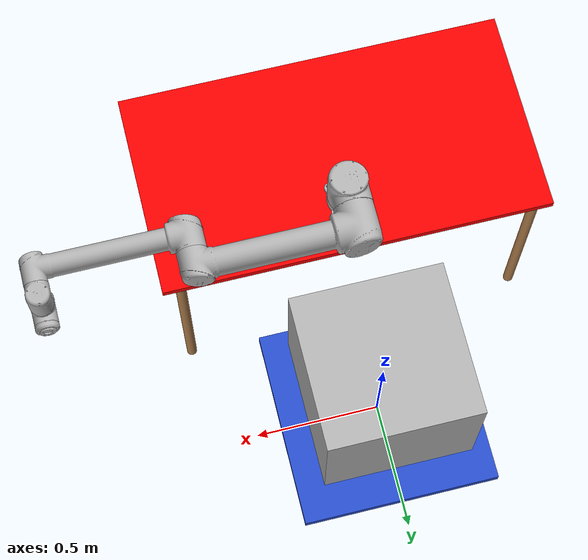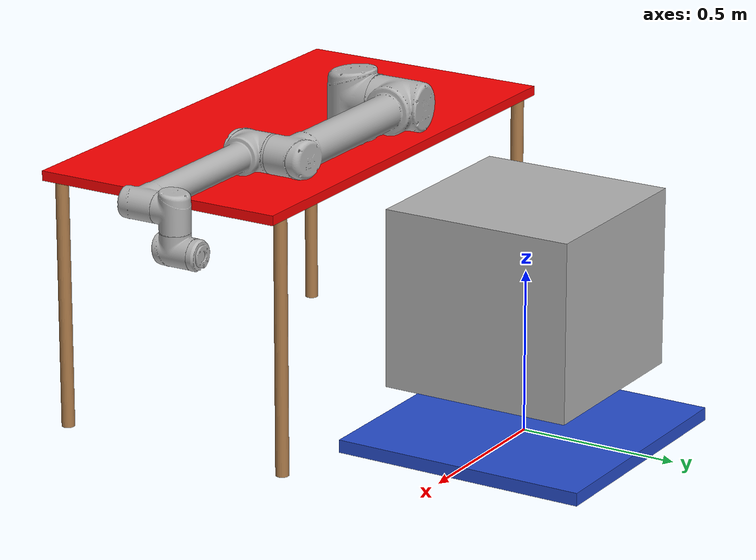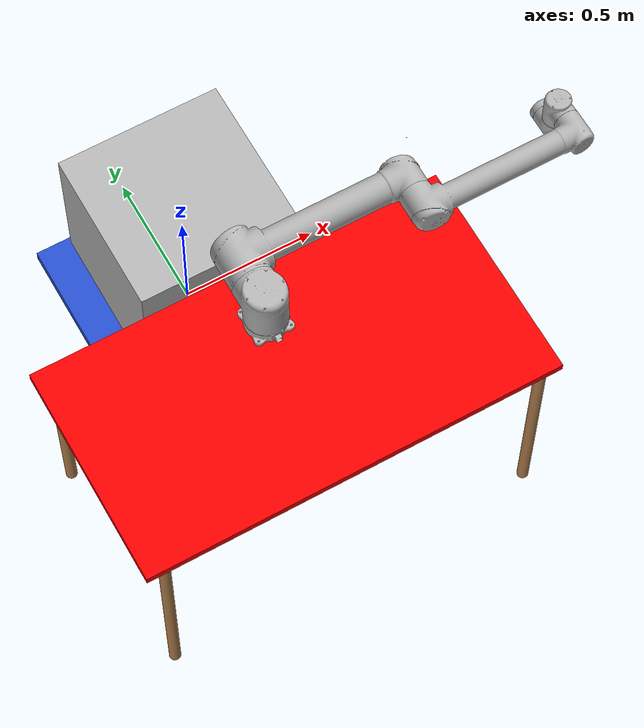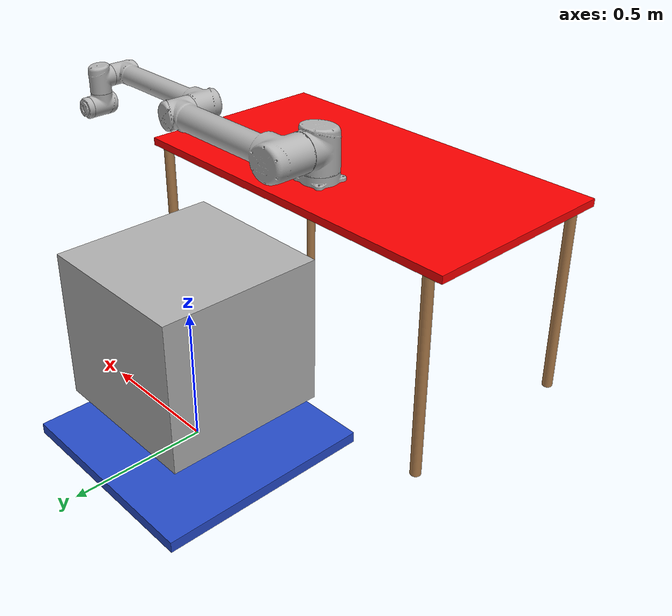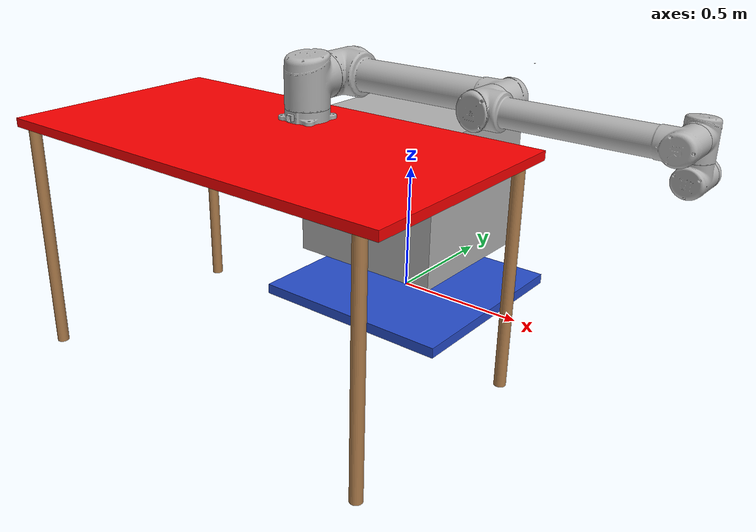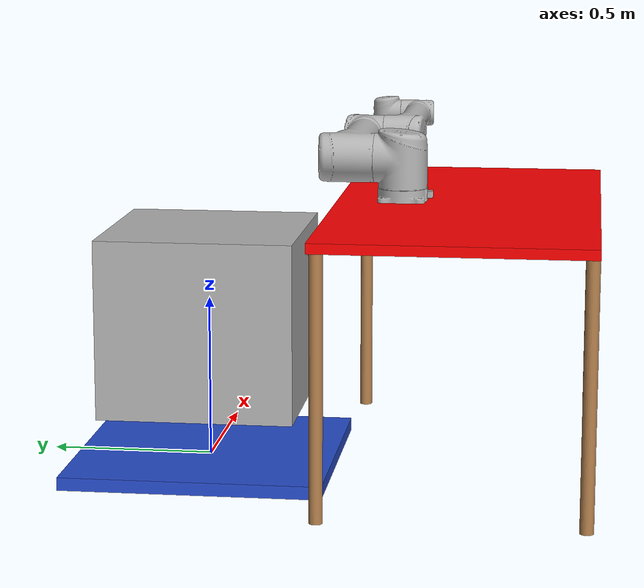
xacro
<?xml version="1.0"?>
<robot xmlns:xacro="http://ros.org/wiki/xacro"
       name="ur10" >

  <!-- common stuff -->
  <xacro:include filename="$(find robotctf_scenario4)/urdf/common.gazebo.xacro" />

  <!-- ur10 -->
  <xacro:include filename="$(find robotctf_scenario4)/urdf/ur10.urdf.xacro" />

  <xacro:include filename="$(find robotctf_scenario4)/urdf/table_small.urdf" />
  <xacro:include filename="$(find robotctf_scenario4)/urdf/workcell_bin.urdf" />

  <!-- arm -->
  <xacro:ur10_robot prefix="" joint_limited="false"/>

  <link name="world" />

  <joint name="world_table_joint" type="fixed">
    <parent link="world" />
    <child link = "table_link" />
    <origin xyz="0.0 -0.8 0" rpy="0.0 0.0 0.0" />
  </joint>

  <joint name="world_joint" type="fixed">
    <parent link="table_link" />
    <child link = "base_link" />
    <origin xyz="0.0 0.2 0.82" rpy="0.0 0.0 0.0" />
  </joint>

  <joint name="worldworkcell_bin_joint" type="fixed">
    <parent link="table_link" />
    <child link = "workcell_bin_link" />
    <origin xyz="0.0 0.8 0.0" rpy="0.0 0.0 0.0" />
  </joint>

</robot>

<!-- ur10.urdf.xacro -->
<robot xmlns:xacro="http://ros.org/wiki/xacro">

<!--
  Author: Kelsey Hawkins
  Contributers: Jimmy Da Silva, Ajit Krisshna N L, Muhammad Asif Rana
-->

  <xacro:include filename="$(find ur_description)/urdf/ur.transmission.xacro" />
  <xacro:include filename="$(find ur_description)/urdf/ur.gazebo.xacro" />

  <!-- Inertia parameters -->
  <xacro:property name="base_mass" value="4.0" />  <!-- This mass might be incorrect -->
  <xacro:property name="shoulder_mass" value="7.778" />
  <xacro:property name="upper_arm_mass" value="12.93" />
  <xacro:property name="forearm_mass" value="3.87" />
  <xacro:property name="wrist_1_mass" value="1.96" />
  <xacro:property name="wrist_2_mass" value="1.96" />
  <xacro:property name="wrist_3_mass" value="0.202" />

  <xacro:property name="shoulder_cog" value="0.00008 0.00244 -0.037" />
  <xacro:property name="upper_arm_cog" value="0.00001 0.15061 0.38757" />
  <xacro:property name="forearm_cog" value="-0.00012 0.06112 0.1984" />
  <xacro:property name="wrist_1_cog" value="-0.00021 -0.00112 0.02269" />
  <xacro:property name="wrist_2_cog" value="-0.00021 0.00112 0.002269" />
  <xacro:property name="wrist_3_cog" value="0 -0.001156 -0.00149" />

  <!-- Kinematic model -->
  <!-- Properties from urcontrol.conf -->
  <xacro:property name="ur10_d1" value="0.1273" />
  <xacro:property name="ur10_a2" value="-0.612" />
  <xacro:property name="ur10_a3" value="-0.5723" />
  <xacro:property name="ur10_d4" value="0.163941" />
  <xacro:property name="ur10_d5" value="0.1157" />
  <xacro:property name="ur10_d6" value="0.0922" />

  <!-- Arbitrary offsets for shoulder/elbow joints -->
  <xacro:property name="shoulder_offset" value="0.220941" />  <!-- measured from model -->
  <xacro:property name="elbow_offset" value="-0.1719" /> <!-- measured from model -->

  <!-- link lengths used in model -->
  <xacro:property name="shoulder_height" value="${ur10_d1}" />
  <xacro:property name="upper_arm_length" value="${-ur10_a2}" />
  <xacro:property name="forearm_length" value="${-ur10_a3}" />
  <xacro:property name="wrist_1_length" value="${ur10_d4 - elbow_offset - shoulder_offset}" />
  <xacro:property name="wrist_2_length" value="${ur10_d5}" />
  <xacro:property name="wrist_3_length" value="${ur10_d6}" />

  <xacro:macro name="cylinder_inertial" params="radius length mass *origin">
    <inertial>
      <mass value="${mass}" />
      <xacro:insert_block name="origin" />
      <inertia ixx="${0.0833333 * mass * (3 * radius * radius + length * length)}" ixy="0.0" ixz="0.0"
        iyy="${0.0833333 * mass * (3 * radius * radius + length * length)}" iyz="0.0"
        izz="${0.5 * mass * radius * radius}" />
    </inertial>
  </xacro:macro>

  <xacro:macro name="ur10_robot" params="prefix joint_limited
		 shoulder_pan_lower_limit:=${-pi}    shoulder_pan_upper_limit:=${pi}
		 shoulder_lift_lower_limit:=${-pi}    shoulder_lift_upper_limit:=${pi}
		 elbow_joint_lower_limit:=${-pi}    elbow_joint_upper_limit:=${pi}
		 wrist_1_lower_limit:=${-pi}    wrist_1_upper_limit:=${pi}
		 wrist_2_lower_limit:=${-pi}    wrist_2_upper_limit:=${pi}
		 wrist_3_lower_limit:=${-pi}    wrist_3_upper_limit:=${pi}">

    <link name="${prefix}base_link" >
      <visual>
        <geometry>
          <mesh filename="model://ur_description/meshes/ur10/visual/base.dae"/>
        </geometry>
        <material name="LightGrey">
          <color rgba="0.7 0.7 0.7 1.0"/>
          <texture filename="model://ur_description/material/gazebo.material" />
        </material>
      </visual>
      <collision>
        <geometry>
          <mesh filename="model://ur_description/meshes/ur10/collision/base.stl"/>
        </geometry>
      </collision>
      <xacro:cylinder_inertial radius="0.075" length="0.038" mass="${base_mass}">
        <origin xyz="0.0 0.0 0.0" rpy="0 0 0" />
      </xacro:cylinder_inertial>
    </link>
    <gazebo reference="${prefix}base_link">
      <material>Gazebo/LightGrey</material>
    </gazebo>

    <joint name="${prefix}shoulder_pan_joint" type="revolute">
      <parent link="${prefix}base_link" />
      <child link = "${prefix}shoulder_link" />
      <origin xyz="0.0 0.0 ${shoulder_height}" rpy="0.0 0.0 0.0" />
      <axis xyz="0 0 1" />
      <xacro:unless value="${joint_limited}">
        <limit lower="${-2.0 * pi}" upper="${2.0 * pi}" effort="330.0" velocity="2.16"/>
      </xacro:unless>
      <xacro:if value="${joint_limited}">
        <limit lower="${shoulder_pan_lower_limit}" upper="${shoulder_pan_upper_limit}" effort="330.0" velocity="2.16"/>
      </xacro:if>
      <dynamics damping="0.0" friction="0.0"/>
    </joint>

    <link name="${prefix}shoulder_link">
      <visual>
        <geometry>
          <mesh filename="model://ur_description/meshes/ur10/visual/shoulder.dae"/>
        </geometry>
        <material name="LightGrey">
          <color rgba="0.7 0.7 0.7 1.0"/>
          <texture filename="model://ur_description/material/gazebo.material" />
        </material>
      </visual>
      <collision>
        <geometry>
          <mesh filename="model://ur_description/meshes/ur10/collision/shoulder.stl"/>
        </geometry>
      </collision>
      <xacro:cylinder_inertial radius="0.075" length="0.178" mass="${shoulder_mass}">
        <origin xyz="0.0 0.0 0.0" rpy="0 0 0" />
      </xacro:cylinder_inertial>
    </link>
    <gazebo reference="${prefix}shoulder_link">
      <material>Gazebo/LightGrey</material>
    </gazebo>

    <joint name="${prefix}shoulder_lift_joint" type="revolute">
      <parent link="${prefix}shoulder_link" />
      <child link = "${prefix}upper_arm_link" />
      <origin xyz="0.0 ${shoulder_offset} 0.0" rpy="0.0 ${pi / 2.0} 0.0" />
      <axis xyz="0 1 0" />
      <xacro:unless value="${joint_limited}">
        <limit lower="${-2.0 * pi}" upper="${2.0 * pi}" effort="330.0" velocity="2.16"/>
      </xacro:unless>
      <xacro:if value="${joint_limited}">
        <limit lower="${shoulder_lift_lower_limit}" upper="${shoulder_lift_upper_limit}" effort="330.0" velocity="2.16"/>
      </xacro:if>
      <dynamics damping="0.0" friction="0.0"/>
    </joint>

    <link name="${prefix}upper_arm_link">
      <visual>
        <geometry>
          <mesh filename="model://ur_description/meshes/ur10/visual/upperarm.dae"/>
        </geometry>
        <material name="LightGrey">
          <color rgba="0.7 0.7 0.7 1.0"/>
          <texture filename="model://ur_description/material/gazebo.material" />
        </material>
      </visual>
      <collision>
        <geometry>
          <mesh filename="model://ur_description/meshes/ur10/collision/upperarm.stl"/>
        </geometry>
      </collision>
      <xacro:cylinder_inertial radius="0.075" length="${-ur10_a2}" mass="${upper_arm_mass}">
        <origin xyz="0.0 0.0 ${-ur10_a2/2.0}" rpy="0 0 0" />
      </xacro:cylinder_inertial>
    </link>
    <gazebo reference="${prefix}upper_arm_link">
      <material>Gazebo/LightGrey</material>
    </gazebo>

    <joint name="${prefix}elbow_joint" type="revolute">
      <parent link="${prefix}upper_arm_link" />
      <child link = "${prefix}forearm_link" />
      <origin xyz="0.0 ${elbow_offset} ${upper_arm_length}" rpy="0.0 0.0 0.0" />
      <axis xyz="0 1 0" />
      <xacro:unless value="${joint_limited}">
        <limit lower="${-pi}" upper="${pi}" effort="150.0" velocity="3.15"/>
      </xacro:unless>
      <xacro:if value="${joint_limited}">
        <limit lower="${elbow_joint_lower_limit}" upper="${elbow_joint_upper_limit}" effort="150.0" velocity="3.15"/>
      </xacro:if>
      <dynamics damping="0.0" friction="0.0"/>
    </joint>

    <link name="${prefix}forearm_link">
      <visual>
         <geometry>
          <mesh filename="model://ur_description/meshes/ur10/visual/forearm.dae"/>
        </geometry>
        <material name="LightGrey">
          <color rgba="0.7 0.7 0.7 1.0"/>
          <texture filename="model://ur_description/material/gazebo.material" />
        </material>
      </visual>
      <collision>
        <geometry>
          <mesh filename="model://ur_description/meshes/ur10/collision/forearm.stl"/>
        </geometry>
      </collision>
      <xacro:cylinder_inertial radius="0.075" length="${-ur10_a3}" mass="${forearm_mass}">
        <origin xyz="0.0 0.0 ${-ur10_a3/2.0}" rpy="0 0 0" />
      </xacro:cylinder_inertial>
    </link>
    <gazebo reference="${prefix}forearm_link">
      <material>Gazebo/LightGrey</material>
    </gazebo>

    <joint name="${prefix}wrist_1_joint" type="revolute">
      <parent link="${prefix}forearm_link" />
      <child link = "${prefix}wrist_1_link" />
      <origin xyz="0.0 0.0 ${forearm_length}" rpy="0.0 ${pi / 2.0} 0.0" />
      <axis xyz="0 1 0" />
      <xacro:unless value="${joint_limited}">
        <limit lower="${-2.0 * pi}" upper="${2.0 * pi}" effort="54.0" velocity="3.2"/>
      </xacro:unless>
      <xacro:if value="${joint_limited}">
        <limit lower="${wrist_1_lower_limit}" upper="${wrist_1_upper_limit}" effort="54.0" velocity="3.2"/>
      </xacro:if>
      <dynamics damping="0.0" friction="0.0"/>
    </joint>

    <link name="${prefix}wrist_1_link">
      <visual>
        <geometry>
          <mesh filename="model://ur_description/meshes/ur10/visual/wrist1.dae"/>
        </geometry>
        <material name="LightGrey">
          <color rgba="0.7 0.7 0.7 1.0"/>
           <texture filename="model://ur_description/material/gazebo.material" />
        </material>
      </visual>
      <collision>
        <geometry>
          <mesh filename="model://ur_description/meshes/ur10/collision/wrist1.stl"/>
        </geometry>
      </collision>
      <xacro:cylinder_inertial radius="0.075" length="0.12" mass="${wrist_1_mass}">
        <origin xyz="0.0 0.0 0.0" rpy="0 0 0" />
      </xacro:cylinder_inertial>
    </link>
    <gazebo reference="${prefix}wrist_1_link">
      <material>Gazebo/LightGrey</material>
    </gazebo>

    <joint name="${prefix}wrist_2_joint" type="revolute">
      <parent link="${prefix}wrist_1_link" />
      <child link = "${prefix}wrist_2_link" />
      <origin xyz="0.0 ${wrist_1_length} 0.0" rpy="0.0 0.0 0.0" />
      <axis xyz="0 0 1" />
      <xacro:unless value="${joint_limited}">
        <limit lower="${-2.0 * pi}" upper="${2.0 * pi}" effort="54.0" velocity="3.2"/>
      </xacro:unless>
      <xacro:if value="${joint_limited}">
        <limit lower="${wrist_2_lower_limit}" upper="${wrist_2_upper_limit}" effort="54.0" velocity="3.2"/>
      </xacro:if>
      <dynamics damping="0.0" friction="0.0"/>
    </joint>

    <link name="${prefix}wrist_2_link">
      <visual>
        <geometry>
          <mesh filename="model://ur_description/meshes/ur10/visual/wrist2.dae"/>
        </geometry>
        <material name="LightGrey">
          <color rgba="0.7 0.7 0.7 1.0"/>
           <texture filename="model://ur_description/material/gazebo.material" />
        </material>
      </visual>
      <collision>
        <geometry>
          <mesh filename="model://ur_description/meshes/ur10/collision/wrist2.stl"/>
        </geometry>
      </collision>
      <xacro:cylinder_inertial radius="0.075" length="0.12" mass="${wrist_2_mass}">
        <origin xyz="0.0 0.0 0.0" rpy="0 0 0" />
      </xacro:cylinder_inertial>
    </link>
    <gazebo reference="${prefix}wrist_2_link">
      <material>Gazebo/LightGrey</material>
    </gazebo>

    <joint name="${prefix}wrist_3_joint" type="revolute">
      <parent link="${prefix}wrist_2_link" />
      <child link = "${prefix}wrist_3_link" />
      <origin xyz="0.0 0.0 ${wrist_2_length}" rpy="0.0 0.0 0.0" />
      <axis xyz="0 1 0" />
      <xacro:unless value="${joint_limited}">
        <limit lower="${-2.0 * pi}" upper="${2.0 * pi}" effort="54.0" velocity="3.2"/>
      </xacro:unless>
      <xacro:if value="${joint_limited}">
        <limit lower="${wrist_3_lower_limit}" upper="${wrist_3_upper_limit}" effort="54.0" velocity="3.2"/>
      </xacro:if>
      <dynamics damping="0.0" friction="0.0"/>
    </joint>

    <link name="${prefix}wrist_3_link">
      <visual>
        <geometry>
          <mesh filename="model://ur_description/meshes/ur10/visual/wrist3.dae"/>
        </geometry>
        <material name="LightGrey">
          <color rgba="0.7 0.7 0.7 1.0"/>
           <texture filename="model://ur_description/material/gazebo.material" />
        </material>
      </visual>
      <collision>
        <geometry>
          <mesh filename="model://ur_description/meshes/ur10/collision/wrist3.stl"/>
        </geometry>
      </collision>
      <xacro:cylinder_inertial radius="0.075" length="0.12" mass="${wrist_3_mass}">
        <origin xyz="0.0 0.0 0.0" rpy="0 0 0" />
      </xacro:cylinder_inertial>
    </link>
    <gazebo reference="${prefix}wrist_3_link">
      <material>Gazebo/LightGrey</material>
    </gazebo>

    <joint name="${prefix}ee_fixed_joint" type="fixed">
      <parent link="${prefix}wrist_3_link" />
      <child link = "${prefix}ee_link" />
      <origin xyz="0.0 ${wrist_3_length} 0.0" rpy="0.0 0.0 ${pi/2.0}" />
    </joint>

    <link name="${prefix}ee_link">
      <collision>
        <geometry>
          <box size="0.01 0.01 0.01"/>
        </geometry>
        <origin rpy="0 0 0" xyz="-0.01 0 0"/>
      </collision>
    </link>

    <xacro:ur_arm_transmission prefix="${prefix}" />
    <xacro:ur_arm_gazebo prefix="${prefix}" />

    <!-- ROS base_link to UR 'Base' Coordinates transform -->
    <link name="${prefix}base"/>
    <joint name="${prefix}base_link-base_fixed_joint" type="fixed">
      <!-- NOTE: this rotation is only needed as long as base_link itself is
                 not corrected wrt the real robot (ie: rotated over 180
                 degrees)
      -->
      <origin xyz="0 0 0" rpy="0 0 ${-pi}"/>
      <parent link="${prefix}base_link"/>
      <child link="${prefix}base"/>
    </joint>

    <!-- Frame coincident with all-zeros TCP on UR controller -->
    <link name="${prefix}tool0"/>
    <joint name="${prefix}wrist_3_link-tool0_fixed_joint" type="fixed">
      <origin xyz="0 ${wrist_3_length} 0" rpy="${pi/-2.0} 0 0"/>
      <parent link="${prefix}wrist_3_link"/>
      <child link="${prefix}tool0"/>
    </joint>

  </xacro:macro>
</robot>

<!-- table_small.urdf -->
<robot name="table">
  <link name="table_link">
    <inertial>
      <mass value="0"/>
      <origin rpy="0 0 0" xyz="0 0 0"/>
      <inertia ixx="0" ixy="0" ixz="0" iyy="0" iyz="0" izz="0"/>
    </inertial>
    <collision name="table_surface">
      <origin rpy="0 0 0" xyz="0 0 0.8"/>
      <geometry>
        <box size="1.5 0.8 0.03"/>
      </geometry>
    </collision>
    <collision name="table_front_left_leg">
      <origin rpy="0 0 0" xyz="0.68 0.38 0.4"/>
      <geometry>
        <cylinder length="0.8" radius="0.02"/>
      </geometry>
    </collision>
    <collision name="table_front_right_leg">
      <origin rpy="0 0 0" xyz="0.68 -0.38 0.4"/>
      <geometry>
        <cylinder length="0.8" radius="0.02"/>
      </geometry>
    </collision>
    <collision name="table_back_right_leg">
      <origin rpy="0 0 0" xyz="-0.68 -0.38 0.4"/>
      <geometry>
        <cylinder length="0.8" radius="0.02"/>
      </geometry>
    </collision>
    <collision name="table_back_left_leg">
      <origin rpy="0 0 0" xyz="-0.68 0.38 0.4"/>
      <geometry>
        <cylinder length="0.8" radius="0.02"/>
      </geometry>
    </collision>
    <visual>
      <origin rpy="0 0 0" xyz="0 0 0.8"/>
      <geometry>
        <box size="1.5 0.8 0.03"/>
      </geometry>
		  <material name="Wood">
		    <color rgba="1.0 0.0 0.0 1.0"/>
		    <texture filename="model://ur_description/material/gazebo.material" />
		  </material>
    </visual>
    <visual>
      <origin rpy="0 0 0" xyz="0.68 0.38 0.4"/>
      <geometry>
        <cylinder length="0.8" radius="0.02"/>
      </geometry>
    </visual>
    <visual>
      <origin rpy="0 0 0" xyz="0.68 -0.38 0.4"/>
      <geometry>
        <cylinder length="0.8" radius="0.02"/>
      </geometry>
    </visual>
    <visual>
      <origin rpy="0 0 0" xyz="-0.68 -0.38 0.4"/>
      <geometry>
        <cylinder length="0.8" radius="0.02"/>
      </geometry>
    </visual>
    <visual>
      <origin rpy="0 0 0" xyz="-0.68 0.38 0.4"/>
      <geometry>
        <cylinder length="0.8" radius="0.02"/>
      </geometry>
    </visual>
  </link>

	<gazebo reference="table_link">
		<material>Gazebo/Wood</material>
	</gazebo>

</robot>

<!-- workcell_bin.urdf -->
<robot name="workcell_bin">
  <link name="workcell_bin_link">
    <inertial>
      <mass value="0"/>
      <origin rpy="0  0  0" xyz="0  0  0"/>
      <inertia ixx="0" ixy="0" ixz="0" iyy="0" iyz="0" izz="0"/>
    </inertial>
    <collision name="workcell_bin_center_collision">
      <origin rpy="0 0 0" xyz="0 0 0.45"/>
      <geometry>
        <box size="0.6 0.6 0.55"/>
      </geometry>
    </collision>
    <visual>
      <origin rpy="0 0 0" xyz="0 0 0.45"/>
      <geometry>
        <box size="0.6 0.6 0.55"/>
      </geometry>
      <material name="Blue">
        <color rgba="0.7 0.7 0.7 1.0"/>
        <texture filename="model://ur_description/material/gazebo.material" />
      </material>
    </visual>
    <collision name="workcell_bin_base">
      <origin rpy="0  0  0" xyz="0       0       0.10024"/>
      <geometry>
        <box size="0.66836 0.66836 0.20049"/>
      </geometry>
    </collision>
    <collision name="workcell_bin_left_wall">
      <origin rpy="0  0  0" xyz="-0.319    0       0.39544"/>
      <geometry>
        <box size="0.003 0.63803 0.79089"/>
      </geometry>
    </collision>
    <collision name="workcell_bin_right_wall">
      <origin rpy="0  0  0" xyz="0.319    0       0.39544"/>
      <geometry>
        <box size="0.003 0.63803 0.79089"/>
      </geometry>
    </collision>
    <collision name="workcell_bin_front_left_wall">
      <origin rpy="0  0  0" xyz="-0.2533   0.31899  0.39544"/>
      <geometry>
        <box size="0.13437 0.003 0.79089"/>
      </geometry>
    </collision>
    <collision name="workcell_bin_front_mid_wall">
      <origin rpy="0  0  0" xyz="0       0.31899  0.25284"/>
      <geometry>
        <box size="0.37226 0.003 0.50569"/>
      </geometry>
    </collision>
    <collision name="workcell_bin_front_right_wall">
      <origin rpy="0  0  0" xyz="0.2533   0.31899  0.39544"/>
      <geometry>
        <box size="0.13437 0.003 0.79089"/>
      </geometry>
    </collision>
    <collision name="workcell_bin_back_left_wall">
      <origin rpy="0  0  0" xyz="-0.2533  -0.31899  0.39544"/>
      <geometry>
        <box size="0.13437 0.003 0.79089"/>
      </geometry>
    </collision>
    <collision name="workcell_bin_back_mid_wall">
      <origin rpy="0  0  0" xyz="0      -0.31899  0.25284"/>
      <geometry>
        <box size="0.37226 0.003 0.50569"/>
      </geometry>
    </collision>
    <collision name="workcell_bin_back_right_wall">
      <origin rpy="0  0  0" xyz="0.2533  -0.31899  0.39544"/>
      <geometry>
        <box size="0.13437 0.003 0.79089"/>
      </geometry>
    </collision>
    <visual name="workcell_bin_visual">
      <origin rpy="0  0  0" xyz="0  0  0"/>
      <geometry>
        <mesh filename="model://workcell_bin/meshes/bin.dae"/>
      </geometry>
    </visual>
  </link>

  <gazebo reference="workcell_bin_link">
    <material>Gazebo/Blue</material>
  </gazebo>
</robot>
